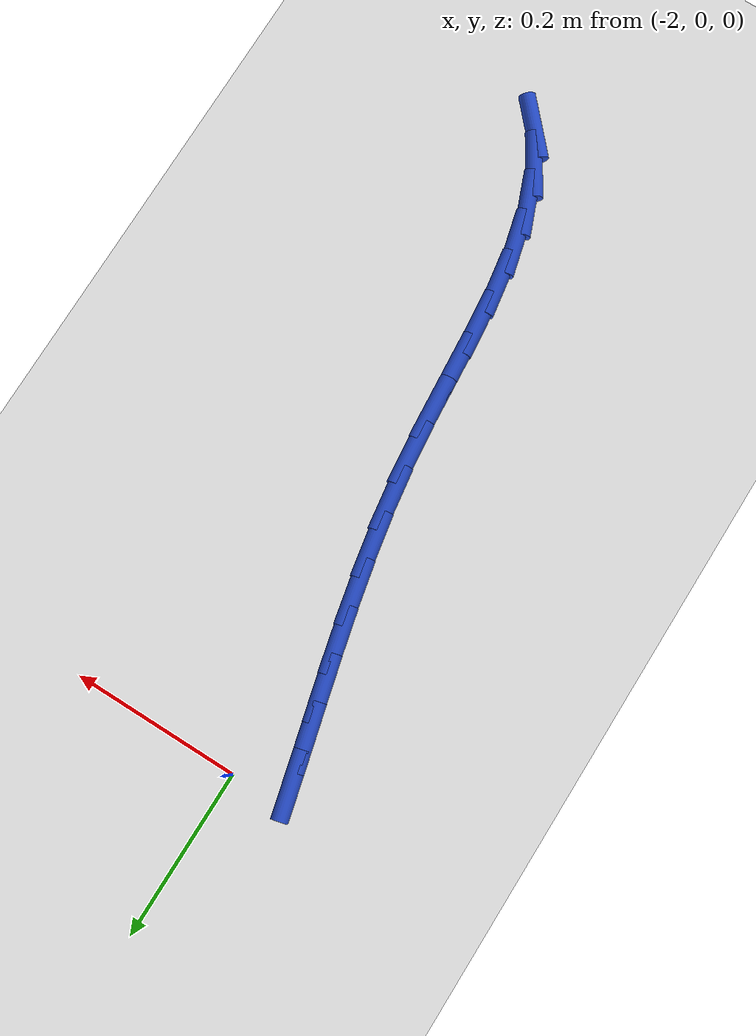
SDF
<sdf version="1.6">
 <world name="default">
  <model name="ground_plane">
   <static>1</static>
   <link name="link">
    <collision name="collision">
     <geometry><plane><normal>0 0 1</normal><size>100 100</size></plane></geometry>
     <surface><friction><ode><mu>100</mu><mu2>50</mu2></ode></friction></surface>
    </collision>
    <visual name="visual">
     <cast_shadows>0</cast_shadows>
     <geometry><plane><normal>0 0 1</normal><size>100 100</size></plane></geometry>
     <material>
      <script><uri>file://media/materials/scripts/gazebo.material</uri><name>Gazebo/WhiteGlow</name></script>
     </material>
    </visual>
   </link>
  </model>
  <model name="line">
   <link name="link_66">
    <pose>-2.059563571552141 -0.024302145658314143 0.01 0 1.57 -1.3230085662018438</pose>
    <collision name="collision">
     <geometry><cylinder><radius>0.01</radius><length>0.08</length></cylinder></geometry>
    </collision>
    <visual name="visual">
     <material>
      <script><name>Gazebo/Blue</name><uri>file://media/materials/scripts/gazebo.material</uri></script>
     </material>
     <geometry><cylinder><radius>0.01</radius><length>0.08</length></cylinder></geometry>
    </visual>
   </link>
   <link name="link_67">
    <pose>-2.0462964979363187 -0.07674391381850039 0.01 0 1.57 -1.319516170293441</pose>
    <collision name="collision">
     <geometry><cylinder><radius>0.01</radius><length>0.08</length></cylinder></geometry>
    </collision>
    <visual name="visual">
     <material>
      <script><name>Gazebo/Blue</name><uri>file://media/materials/scripts/gazebo.material</uri></script>
     </material>
     <geometry><cylinder><radius>0.01</radius><length>0.08</length></cylinder></geometry>
    </visual>
   </link>
   <link name="link_68">
    <pose>-2.0326879383735306 -0.12975615388160489 0.01 0 1.57 -1.3245285268525206</pose>
    <collision name="collision">
     <geometry><cylinder><radius>0.01</radius><length>0.08</length></cylinder></geometry>
    </collision>
    <visual name="visual">
     <material>
      <script><name>Gazebo/Blue</name><uri>file://media/materials/scripts/gazebo.material</uri></script>
     </material>
     <geometry><cylinder><radius>0.01</radius><length>0.08</length></cylinder></geometry>
    </visual>
   </link>
   <link name="link_69">
    <pose>-2.019220334817263 -0.1833329351556655 0.01 0 1.57 -1.3378429798104439</pose>
    <collision name="collision">
     <geometry><cylinder><radius>0.01</radius><length>0.08</length></cylinder></geometry>
    </collision>
    <visual name="visual">
     <material>
      <script><name>Gazebo/Blue</name><uri>file://media/materials/scripts/gazebo.material</uri></script>
     </material>
     <geometry><cylinder><radius>0.01</radius><length>0.08</length></cylinder></geometry>
    </visual>
   </link>
   <link name="link_70">
    <pose>-2.006376129221001 -0.23746832694871972 0.01 0 1.57 -1.359362223970473</pose>
    <collision name="collision">
     <geometry><cylinder><radius>0.01</radius><length>0.08</length></cylinder></geometry>
    </collision>
    <visual name="visual">
     <material>
      <script><name>Gazebo/Blue</name><uri>file://media/materials/scripts/gazebo.material</uri></script>
     </material>
     <geometry><cylinder><radius>0.01</radius><length>0.08</length></cylinder></geometry>
    </visual>
   </link>
   <link name="link_71">
    <pose>-1.9946377635382322 -0.29215639856880316 0.01 0 1.57 -1.3890614594530128</pose>
    <collision name="collision">
     <geometry><cylinder><radius>0.01</radius><length>0.08</length></cylinder></geometry>
    </collision>
    <visual name="visual">
     <material>
      <script><name>Gazebo/Blue</name><uri>file://media/materials/scripts/gazebo.material</uri></script>
     </material>
     <geometry><cylinder><radius>0.01</radius><length>0.08</length></cylinder></geometry>
    </visual>
   </link>
   <link name="link_72">
    <pose>-1.9844876797224424 -0.34739121932395334 0.01 0 1.57 -1.426942277248262</pose>
    <collision name="collision">
     <geometry><cylinder><radius>0.01</radius><length>0.08</length></cylinder></geometry>
    </collision>
    <visual name="visual">
     <material>
      <script><name>Gazebo/Blue</name><uri>file://media/materials/scripts/gazebo.material</uri></script>
     </material>
     <geometry><cylinder><radius>0.01</radius><length>0.08</length></cylinder></geometry>
    </visual>
   </link>
   <link name="link_73">
    <pose>-1.9764083197271174 -0.40316685852220746 0.01 0 1.57 -1.4687384701019224</pose>
    <collision name="collision">
     <geometry><cylinder><radius>0.01</radius><length>0.08</length></cylinder></geometry>
    </collision>
    <visual name="visual">
     <material>
      <script><name>Gazebo/Blue</name><uri>file://media/materials/scripts/gazebo.material</uri></script>
     </material>
     <geometry><cylinder><radius>0.01</radius><length>0.08</length></cylinder></geometry>
    </visual>
   </link>
   <link name="link_74">
    <pose>-1.9706509572565445 -0.45938359255973826 0.01 0 1.57 -1.4927624785906057</pose>
    <collision name="collision">
     <geometry><cylinder><radius>0.01</radius><length>0.08</length></cylinder></geometry>
    </collision>
    <visual name="visual">
     <material>
      <script><name>Gazebo/Blue</name><uri>file://media/materials/scripts/gazebo.material</uri></script>
     </material>
     <geometry><cylinder><radius>0.01</radius><length>0.08</length></cylinder></geometry>
    </visual>
   </link>
   <link name="link_75">
    <pose>-1.9662666092146446 -0.5154547123549073 0.01 0 1.57 -1.4921520680172529</pose>
    <collision name="collision">
     <geometry><cylinder><radius>0.01</radius><length>0.08</length></cylinder></geometry>
    </collision>
    <visual name="visual">
     <material>
      <script><name>Gazebo/Blue</name><uri>file://media/materials/scripts/gazebo.material</uri></script>
     </material>
     <geometry><cylinder><radius>0.01</radius><length>0.08</length></cylinder></geometry>
    </visual>
   </link>
   <link name="link_76">
    <pose>-1.9619179529266606 -0.5706359460984829 0.01 0 1.57 -1.4656615807612159</pose>
    <collision name="collision">
     <geometry><cylinder><radius>0.01</radius><length>0.08</length></cylinder></geometry>
    </collision>
    <visual name="visual">
     <material>
      <script><name>Gazebo/Blue</name><uri>file://media/materials/scripts/gazebo.material</uri></script>
     </material>
     <geometry><cylinder><radius>0.01</radius><length>0.08</length></cylinder></geometry>
    </visual>
   </link>
   <link name="link_77">
    <pose>-1.9562674688822435 -0.6241829421182638 0.01 0 1.57 -1.410181134109254</pose>
    <collision name="collision">
     <geometry><cylinder><radius>0.01</radius><length>0.08</length></cylinder></geometry>
    </collision>
    <visual name="visual">
     <material>
      <script><name>Gazebo/Blue</name><uri>file://media/materials/scripts/gazebo.material</uri></script>
     </material>
     <geometry><cylinder><radius>0.01</radius><length>0.08</length></cylinder></geometry>
    </visual>
   </link>
   <link name="link_78">
    <pose>-1.9479776375710431 -0.6753513487420485 0.01 0 1.57 -1.3208221855853843</pose>
    <collision name="collision">
     <geometry><cylinder><radius>0.01</radius><length>0.08</length></cylinder></geometry>
    </collision>
    <visual name="visual">
     <material>
      <script><name>Gazebo/Blue</name><uri>file://media/materials/scripts/gazebo.material</uri></script>
     </material>
     <geometry><cylinder><radius>0.01</radius><length>0.08</length></cylinder></geometry>
    </visual>
   </link>
   <link name="link_79">
    <pose>-1.9357109394827108 -0.7233968142976338 0.01 0 1.57 -1.1920510039460688</pose>
    <collision name="collision">
     <geometry><cylinder><radius>0.01</radius><length>0.08</length></cylinder></geometry>
    </collision>
    <visual name="visual">
     <material>
      <script><name>Gazebo/Blue</name><uri>file://media/materials/scripts/gazebo.material</uri></script>
     </material>
     <geometry><cylinder><radius>0.01</radius><length>0.08</length></cylinder></geometry>
    </visual>
   </link>
   <link name="link_80">
    <pose>-1.9181298551068977 -0.7675749871128187 0.01 0 1.57 -1.021556971892145</pose>
    <collision name="collision">
     <geometry><cylinder><radius>0.01</radius><length>0.08</length></cylinder></geometry>
    </collision>
    <visual name="visual">
     <material>
      <script><name>Gazebo/Blue</name><uri>file://media/materials/scripts/gazebo.material</uri></script>
     </material>
     <geometry><cylinder><radius>0.01</radius><length>0.08</length></cylinder></geometry>
    </visual>
   </link>
   <link name="link_81">
    <pose>-1.8939085901263397 -0.8071483939279712 0.01 0 1.57 -0.836272228331215</pose>
    <collision name="collision">
     <geometry><cylinder><radius>0.01</radius><length>0.08</length></cylinder></geometry>
    </collision>
    <visual name="visual">
     <material>
      <script><name>Gazebo/Blue</name><uri>file://media/materials/scripts/gazebo.material</uri></script>
     </material>
     <geometry><cylinder><radius>0.01</radius><length>0.08</length></cylinder></geometry>
    </visual>
   </link>
  </model>
 </world>
</sdf>
